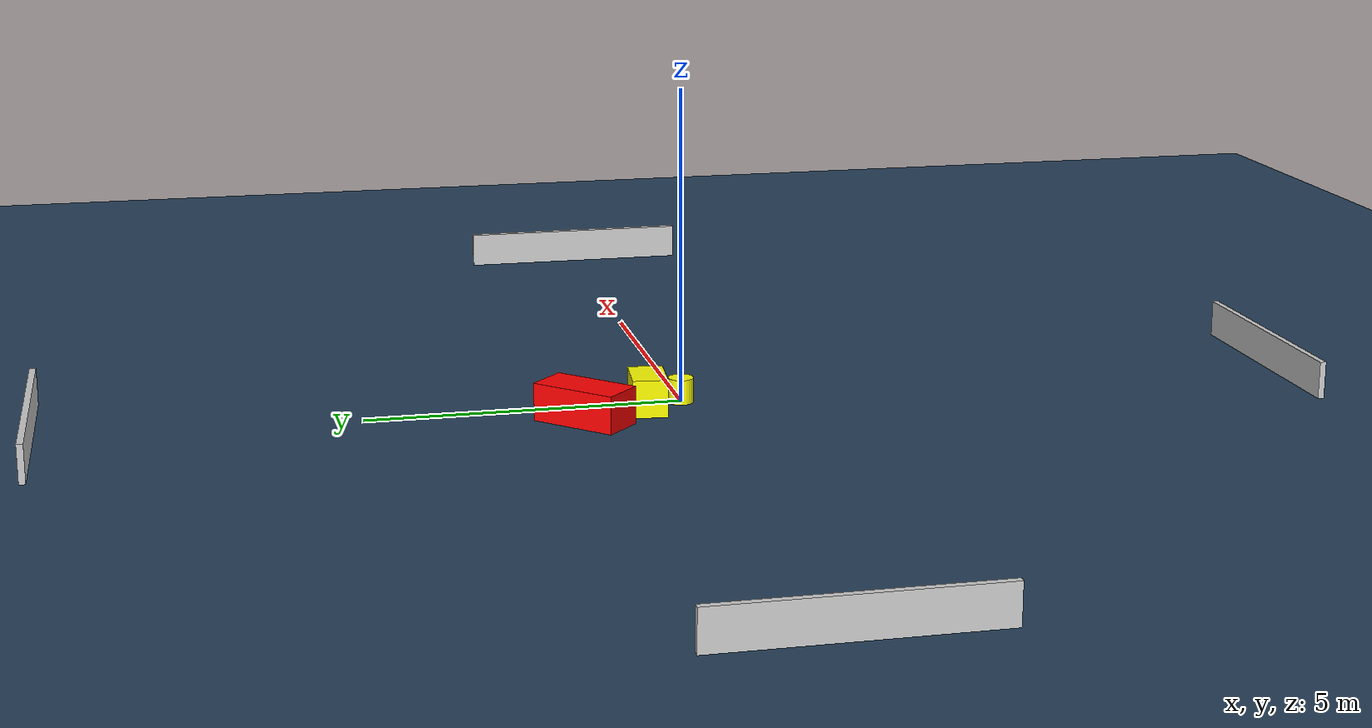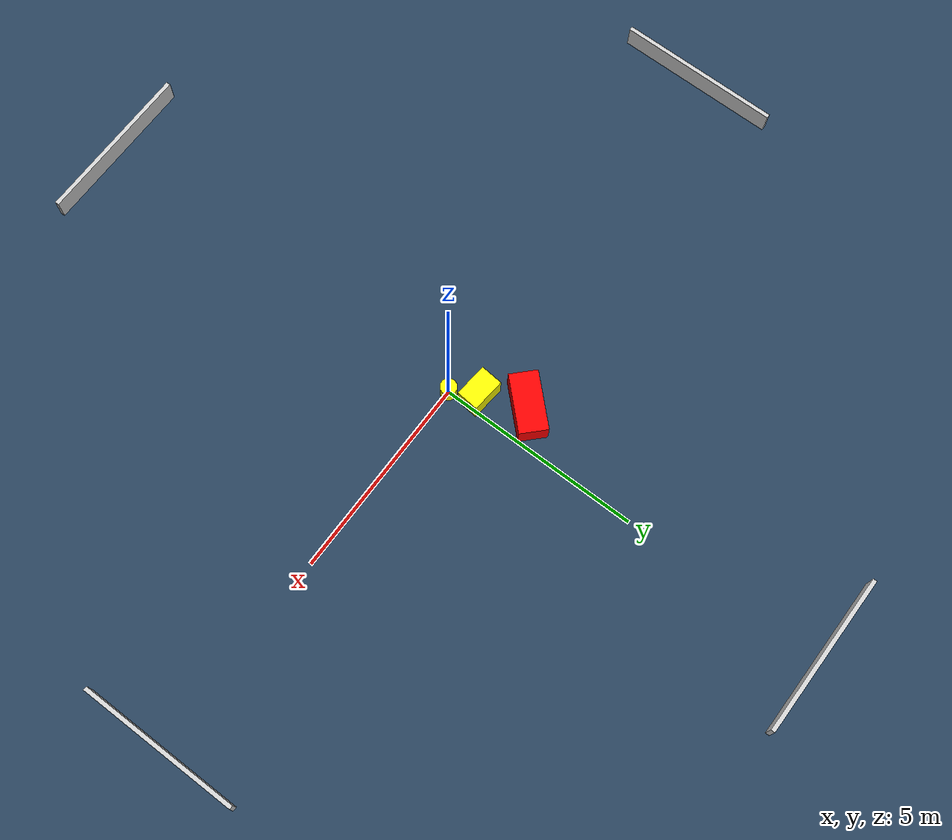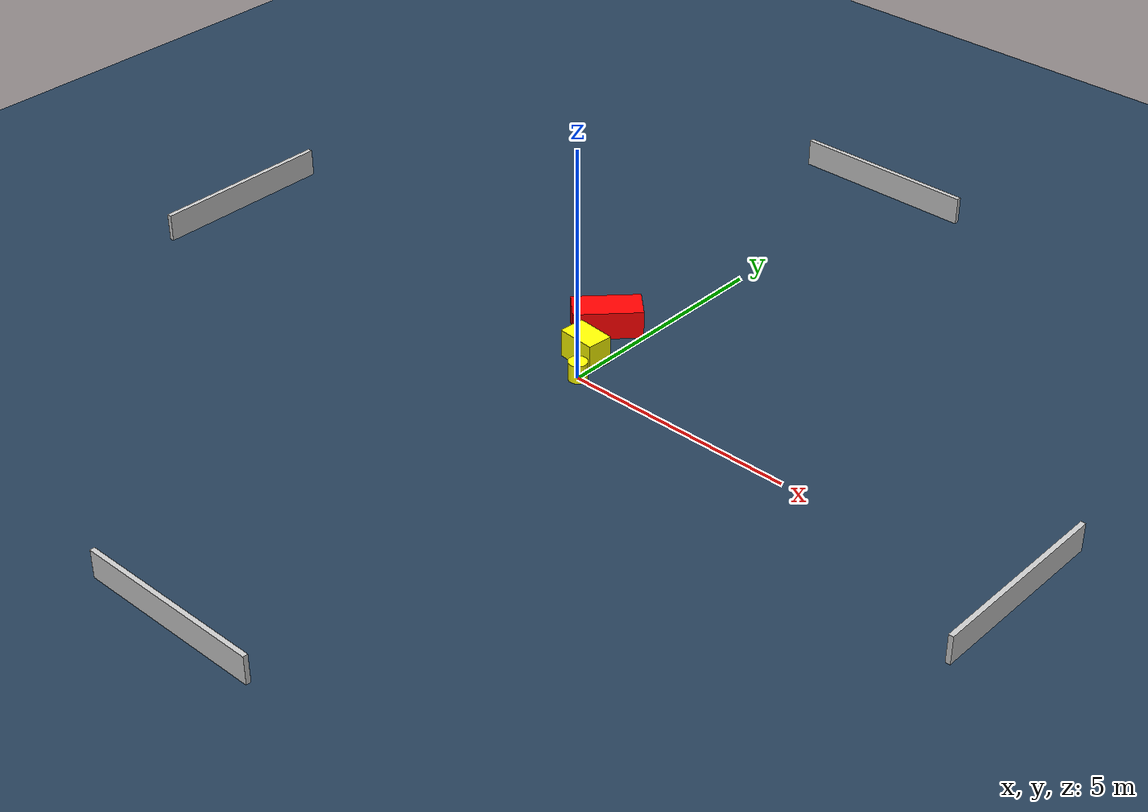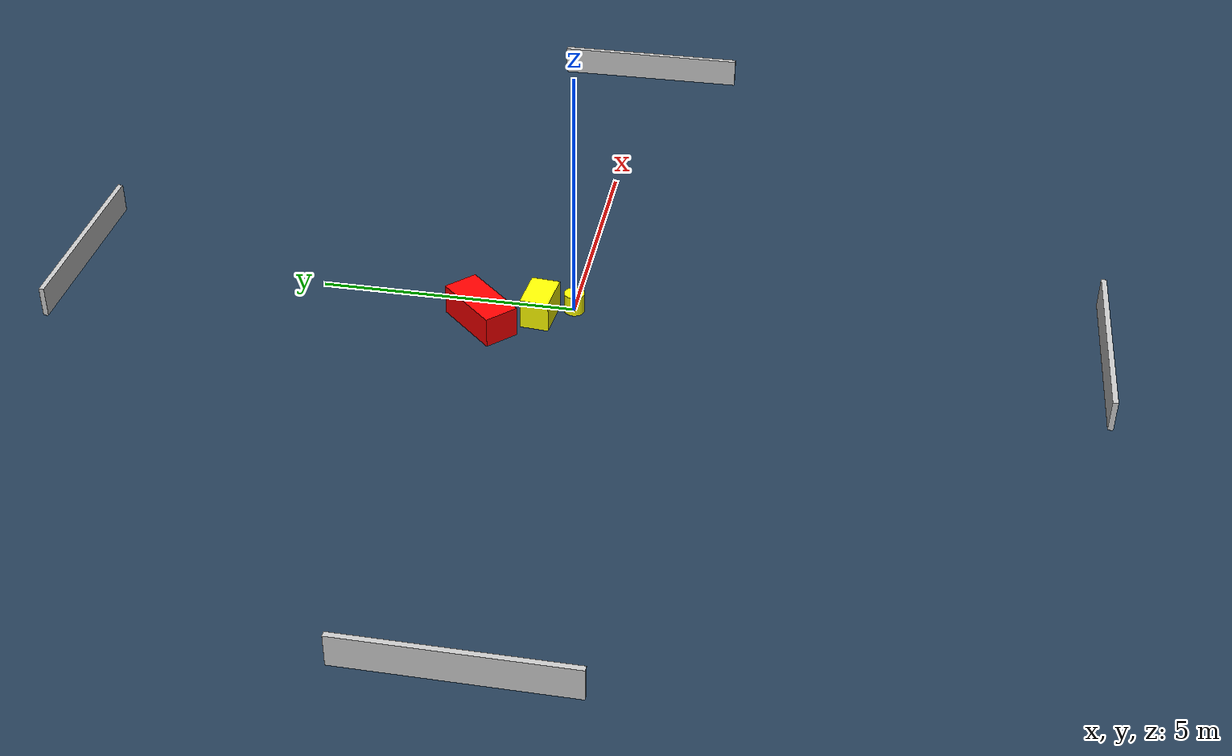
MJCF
<?xml version="1.0" ?>
<mujoco model="generated_environment">
  <option timestep="0.01" integrator="RK4" cone="elliptic"/>
  <default>
    <geom density="1"/>
  </default>
  <asset>
    <texture builtin="gradient" height="3072" name="skybox" rgb1="0.3 0.5 0.7" rgb2="0 0 0" type="skybox" width="512"/>
    <texture builtin="checker" height="300" name="groundplane" rgb1="0.2 0.3 0.4" rgb2="0.1 0.2 0.3" type="2d" width="300"/>
    <material name="groundplane" reflectance="0.2" texrepeat="5 5" texture="groundplane"/>
  </asset>
  <worldbody>
    <light dir="0 0 -1" directional="true" pos="0 0 1.5"/>
    <geom condim="3" friction="0.5 0.005 0.001" material="groundplane" name="floor" pos="0 0 0" size="0 0 0.05" type="plane"/>
    <body name="walls">
      <geom name="wall_1" condim="4" pos="-10.0 0.0 0.3" rgba="0.800000011920929 0.800000011920929 0.800000011920929 1.0" size="0.05 2.0 0.3" type="box"/>
      <geom name="wall_2" condim="4" pos="10.0 0.0 0.3" rgba="0.800000011920929 0.800000011920929 0.800000011920929 1.0" size="0.05 2.0 0.3" type="box"/>
      <geom name="wall_3" condim="4" pos="0.0 -10.0 0.3" rgba="0.800000011920929 0.800000011920929 0.800000011920929 1.0" size="2.0 0.05 0.3" type="box"/>
      <geom name="wall_4" condim="4" pos="0.0 10.0 0.3" rgba="0.800000011920929 0.800000011920929 0.800000011920929 1.0" size="2.0 0.05 0.3" type="box"/>
    </body>
    <body name="robot">
      <joint name="joint_x" type="slide" pos="0 0 0" axis="1 0 0"/>
      <joint name="joint_y" type="slide" pos="0 0 0" axis="0 1 0"/>
      <geom name="robot" type="cylinder" pos="0.0 0.0 0.2" size="0.2 0.2 0.0" mass="5.0" friction="1.0 0.005 0.0001" condim="4" rgba="1.0 1.0 0.0 1.0"/>
    </body>
    <body name="obstacle_1_movable">
      <geom name="obstacle_1_movable" condim="4" pos="-0.34478173867364176 0.6072909927941103 0.3" euler="0 0 264.781472746097" friction="0.0 0.005 0.001" rgba="1.0 1.0 0.0 1.0" size="0.27751542814250457 0.4175324136253177 0.3" type="box" mass="0.1"/>
      <joint type="free"/>
    </body>
    <body name="obstacle_2_static">
      <geom name="obstacle_2_static" condim="4" pos="-0.7477535966723441 1.6772788931107094 0.3" euler="0 0 135.98711655105572" friction="0.0 0.005 0.001" rgba="1.0 0.0 0.0 1.0" size="0.3456867610921772 0.7135917550507298 0.3" type="box"/>
    </body>
  </worldbody>
  <actuator>
    <motor name="actuator_x" joint="joint_x" gear="1" ctrlrange="-1 1"/>
    <motor name="actuator_y" joint="joint_y" gear="1" ctrlrange="-1 1"/>
  </actuator>
</mujoco>
